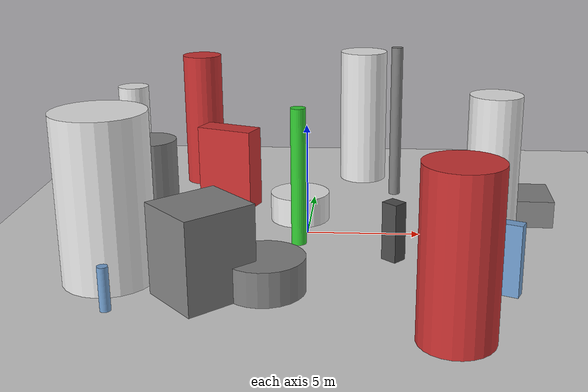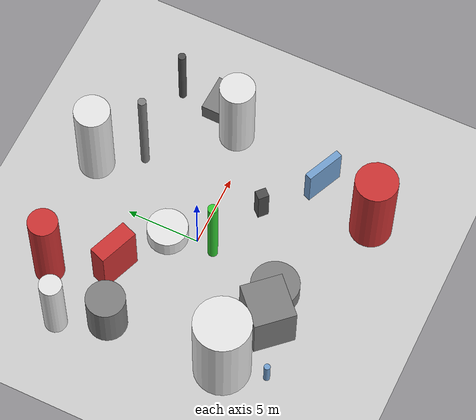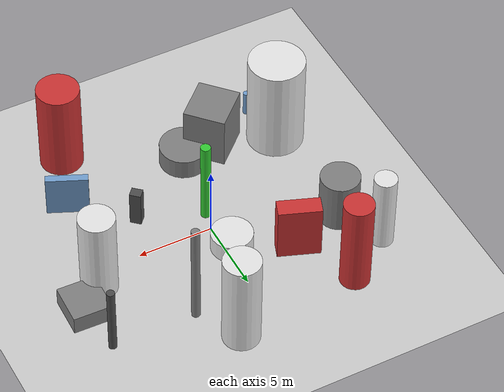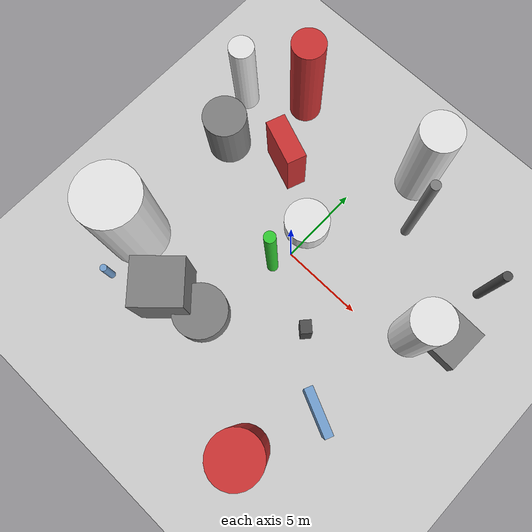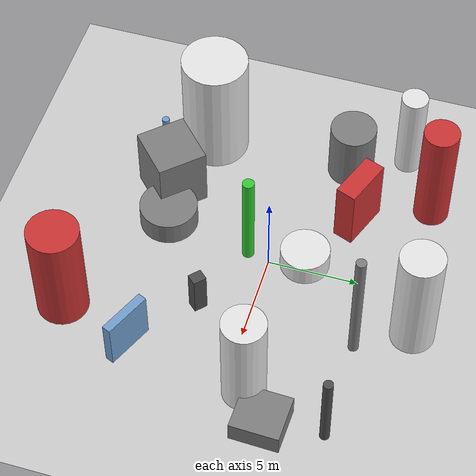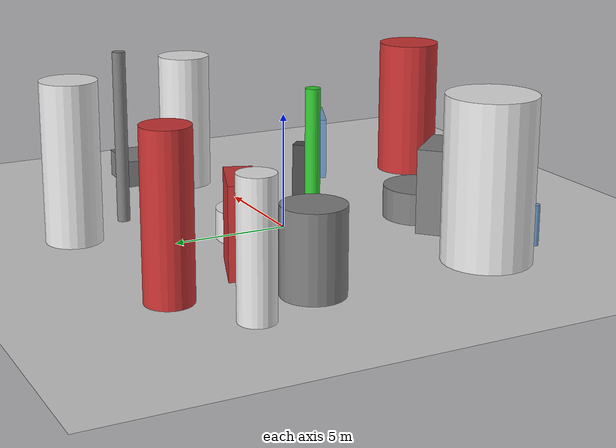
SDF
<?xml version='1.0'?>
<sdf version='1.6'>
  <world name='default'>
    <!-- Sun light -->
    <light name='sun' type='directional'>
      <cast_shadows>1</cast_shadows>
      <pose>0 0 10 0 0 0</pose>
      <diffuse>0.8 0.8 0.8 1</diffuse>
      <specular>0.2 0.2 0.2 1</specular>
      <attenuation>
        <range>1000</range>
        <constant>0.9</constant>
        <linear>0.01</linear>
        <quadratic>0.001</quadratic>
      </attenuation>
      <direction>-0.5 0.1 -0.9</direction>
    </light>

    <!-- Ground plane -->
    <model name='ground_plane'>
      <static>1</static>
      <link name='link'>
        <collision name='collision'>
          <geometry>
            <plane>
              <normal>0 0 1</normal>
              <size>100 100</size>
            </plane>
          </geometry>
          <surface>
            <contact>
              <collide_bitmask>65535</collide_bitmask>
              <ode/>
            </contact>
            <friction>
              <ode>
                <mu>100</mu>
                <mu2>50</mu2>
              </ode>
              <torsional><ode/></torsional>
            </friction>
            <bounce/>
          </surface>
          <max_contacts>10</max_contacts>
        </collision>
        <visual name='visual'>
          <cast_shadows>0</cast_shadows>
          <geometry>
            <plane>
              <normal>0 0 1</normal>
              <size>100 100</size>
            </plane>
          </geometry>
          <material>
            <script>
              <uri>file://media/materials/scripts/gazebo.material</uri>
              <n>Gazebo/Grey</n>
            </script>
          </material>
        </visual>
      </link>
    </model>

    <!-- Environment -->
    <magnetic_field>6e-06 2.3e-05 -4.2e-05</magnetic_field>
    <atmosphere type='adiabatic'/>
    <physics name='default_physics' default='0' type='ode'>
      <gravity>0 0 -9.8</gravity>
      <max_step_size>0.004</max_step_size>
      <real_time_factor>1</real_time_factor>
      <real_time_update_rate>250</real_time_update_rate>
    </physics>
    <scene>
      <ambient>0.4 0.4 0.4 1</ambient>
      <background>0.7 0.7 0.7 1</background>
      <shadows>1</shadows>
    </scene>
    <wind/>
    <spherical_coordinates>
      <surface_model>EARTH_WGS84</surface_model>
      <latitude_deg>0</latitude_deg>
      <longitude_deg>0</longitude_deg>
      <elevation>0</elevation>
      <heading_deg>0</heading_deg>
    </spherical_coordinates>

    <!-- ============ OBSTACLES (18) ============ -->
    <model name='obs_00'>
      <static>1</static>
      <link name='link'>
        <visual name='visual'>
          <geometry>
            <cylinder>
              <radius>0.9814</radius>
              <length>6.7359</length>
            </cylinder>
          </geometry>
          <material>
            <script>
              <n>Gazebo/Red</n>
              <uri>file://media/materials/scripts/gazebo.material</uri>
            </script>
            <ambient>0.8 0.2 0.2 1</ambient>
          </material>
        </visual>
        <collision name='collision'>
          <geometry>
            <cylinder>
              <radius>0.9814</radius>
              <length>6.7359</length>
            </cylinder>
          </geometry>
          <max_contacts>10</max_contacts>
          <surface>
            <contact><ode/></contact>
            <bounce/>
            <friction>
              <ode><mu>1</mu><mu2>1</mu2></ode>
              <torsional><ode/></torsional>
            </friction>
          </surface>
        </collision>
      </link>
      <pose>-6.0255 7.7504 3.3680 0 0 1.6686</pose>
    </model>

    <model name='obs_01'>
      <static>1</static>
      <link name='link'>
        <visual name='visual'>
          <geometry>
            <box>
              <size>0.5025 2.7331 2.8952</size>
            </box>
          </geometry>
          <material>
            <script>
              <n>Gazebo/Blue</n>
              <uri>file://media/materials/scripts/gazebo.material</uri>
            </script>
            <ambient>0.447 0.624 0.812 1</ambient>
          </material>
        </visual>
        <collision name='collision'>
          <geometry>
            <box>
              <size>0.5025 2.7331 2.8952</size>
            </box>
          </geometry>
          <max_contacts>10</max_contacts>
          <surface>
            <contact><ode/></contact>
            <bounce/>
            <friction>
              <ode><mu>1</mu><mu2>1</mu2></ode>
              <torsional><ode/></torsional>
            </friction>
          </surface>
        </collision>
      </link>
      <pose>7.2732 -5.6442 1.4476 0 0 1.1533</pose>
    </model>

    <model name='obs_02'>
      <static>1</static>
      <link name='link'>
        <visual name='visual'>
          <geometry>
            <cylinder>
              <radius>1.2965</radius>
              <length>3.5485</length>
            </cylinder>
          </geometry>
          <material>
            <script>
              <n>Gazebo/Grey</n>
              <uri>file://media/materials/scripts/gazebo.material</uri>
            </script>
            <ambient>0.5 0.5 0.5 1</ambient>
          </material>
        </visual>
        <collision name='collision'>
          <geometry>
            <cylinder>
              <radius>1.2965</radius>
              <length>3.5485</length>
            </cylinder>
          </geometry>
          <max_contacts>10</max_contacts>
          <surface>
            <contact><ode/></contact>
            <bounce/>
            <friction>
              <ode><mu>1</mu><mu2>1</mu2></ode>
              <torsional><ode/></torsional>
            </friction>
          </surface>
        </collision>
      </link>
      <pose>-7.7414 2.6582 1.7743 0 0 2.7738</pose>
    </model>

    <model name='obs_03'>
      <static>1</static>
      <link name='link'>
        <visual name='visual'>
          <geometry>
            <box>
              <size>3.0235 2.8040 3.6948</size>
            </box>
          </geometry>
          <material>
            <script>
              <n>Gazebo/Grey</n>
              <uri>file://media/materials/scripts/gazebo.material</uri>
            </script>
            <ambient>0.5 0.5 0.5 1</ambient>
          </material>
        </visual>
        <collision name='collision'>
          <geometry>
            <box>
              <size>3.0235 2.8040 3.6948</size>
            </box>
          </geometry>
          <max_contacts>10</max_contacts>
          <surface>
            <contact><ode/></contact>
            <bounce/>
            <friction>
              <ode><mu>1</mu><mu2>1</mu2></ode>
              <torsional><ode/></torsional>
            </friction>
          </surface>
        </collision>
      </link>
      <pose>-3.5097 -6.6528 1.8474 0 0 0.7502</pose>
    </model>

    <model name='obs_04'>
      <static>1</static>
      <link name='link'>
        <visual name='visual'>
          <geometry>
            <cylinder>
              <radius>1.4140</radius>
              <length>6.3601</length>
            </cylinder>
          </geometry>
          <material>
            <script>
              <n>Gazebo/Red</n>
              <uri>file://media/materials/scripts/gazebo.material</uri>
            </script>
            <ambient>0.8 0.2 0.2 1</ambient>
          </material>
        </visual>
        <collision name='collision'>
          <geometry>
            <cylinder>
              <radius>1.4140</radius>
              <length>6.3601</length>
            </cylinder>
          </geometry>
          <max_contacts>10</max_contacts>
          <surface>
            <contact><ode/></contact>
            <bounce/>
            <friction>
              <ode><mu>1</mu><mu2>1</mu2></ode>
              <torsional><ode/></torsional>
            </friction>
          </surface>
        </collision>
      </link>
      <pose>5.7829 -9.8214 3.1801 0 0 0.5965</pose>
    </model>

    <model name='obs_05'>
      <static>1</static>
      <link name='link'>
        <visual name='visual'>
          <geometry>
            <cylinder>
              <radius>0.7468</radius>
              <length>5.4863</length>
            </cylinder>
          </geometry>
          <material>
            <script>
              <n>Gazebo/White</n>
              <uri>file://media/materials/scripts/gazebo.material</uri>
            </script>
            <ambient>0.9 0.9 0.9 1</ambient>
          </material>
        </visual>
        <collision name='collision'>
          <geometry>
            <cylinder>
              <radius>0.7468</radius>
              <length>5.4863</length>
            </cylinder>
          </geometry>
          <max_contacts>10</max_contacts>
          <surface>
            <contact><ode/></contact>
            <bounce/>
            <friction>
              <ode><mu>1</mu><mu2>1</mu2></ode>
              <torsional><ode/></torsional>
            </friction>
          </surface>
        </collision>
      </link>
      <pose>-9.1601 5.6695 2.7432 0 0 1.9259</pose>
    </model>

    <model name='obs_06'>
      <static>1</static>
      <link name='link'>
        <visual name='visual'>
          <geometry>
            <cylinder>
              <radius>1.3689</radius>
              <length>1.3064</length>
            </cylinder>
          </geometry>
          <material>
            <script>
              <n>Gazebo/White</n>
              <uri>file://media/materials/scripts/gazebo.material</uri>
            </script>
            <ambient>0.9 0.9 0.9 1</ambient>
          </material>
        </visual>
        <collision name='collision'>
          <geometry>
            <cylinder>
              <radius>1.3689</radius>
              <length>1.3064</length>
            </cylinder>
          </geometry>
          <max_contacts>10</max_contacts>
          <surface>
            <contact><ode/></contact>
            <bounce/>
            <friction>
              <ode><mu>1</mu><mu2>1</mu2></ode>
              <torsional><ode/></torsional>
            </friction>
          </surface>
        </collision>
      </link>
      <pose>-0.4946 1.9242 0.6532 0 0 0.3024</pose>
    </model>

    <model name='obs_07'>
      <static>1</static>
      <link name='link'>
        <visual name='visual'>
          <geometry>
            <cylinder>
              <radius>0.2079</radius>
              <length>1.7494</length>
            </cylinder>
          </geometry>
          <material>
            <script>
              <n>Gazebo/Blue</n>
              <uri>file://media/materials/scripts/gazebo.material</uri>
            </script>
            <ambient>0.447 0.624 0.812 1</ambient>
          </material>
        </visual>
        <collision name='collision'>
          <geometry>
            <cylinder>
              <radius>0.2079</radius>
              <length>1.7494</length>
            </cylinder>
          </geometry>
          <max_contacts>10</max_contacts>
          <surface>
            <contact><ode/></contact>
            <bounce/>
            <friction>
              <ode><mu>1</mu><mu2>1</mu2></ode>
              <torsional><ode/></torsional>
            </friction>
          </surface>
        </collision>
      </link>
      <pose>-6.8460 -8.1720 0.8747 0 0 0.5612</pose>
    </model>

    <model name='obs_08'>
      <static>1</static>
      <link name='link'>
        <visual name='visual'>
          <geometry>
            <cylinder>
              <radius>1.2064</radius>
              <length>6.8541</length>
            </cylinder>
          </geometry>
          <material>
            <script>
              <n>Gazebo/White</n>
              <uri>file://media/materials/scripts/gazebo.material</uri>
            </script>
            <ambient>0.9 0.9 0.9 1</ambient>
          </material>
        </visual>
        <collision name='collision'>
          <geometry>
            <cylinder>
              <radius>1.2064</radius>
              <length>6.8541</length>
            </cylinder>
          </geometry>
          <max_contacts>10</max_contacts>
          <surface>
            <contact><ode/></contact>
            <bounce/>
            <friction>
              <ode><mu>1</mu><mu2>1</mu2></ode>
              <torsional><ode/></torsional>
            </friction>
          </surface>
        </collision>
      </link>
      <pose>2.3729 8.6170 3.4270 0 0 0.3102</pose>
    </model>

    <model name='obs_09'>
      <static>1</static>
      <link name='link'>
        <visual name='visual'>
          <geometry>
            <box>
              <size>2.6839 2.5661 1.2454</size>
            </box>
          </geometry>
          <material>
            <script>
              <n>Gazebo/Grey</n>
              <uri>file://media/materials/scripts/gazebo.material</uri>
            </script>
            <ambient>0.5 0.5 0.5 1</ambient>
          </material>
        </visual>
        <collision name='collision'>
          <geometry>
            <box>
              <size>2.6839 2.5661 1.2454</size>
            </box>
          </geometry>
          <max_contacts>10</max_contacts>
          <surface>
            <contact><ode/></contact>
            <bounce/>
            <friction>
              <ode><mu>1</mu><mu2>1</mu2></ode>
              <torsional><ode/></torsional>
            </friction>
          </surface>
        </collision>
      </link>
      <pose>9.9395 2.5026 0.6227 0 0 1.5391</pose>
    </model>

    <model name='obs_10'>
      <static>1</static>
      <link name='link'>
        <visual name='visual'>
          <geometry>
            <cylinder>
              <radius>0.2811</radius>
              <length>7.5115</length>
            </cylinder>
          </geometry>
          <material>
            <script>
              <n>Gazebo/Grey</n>
              <uri>file://media/materials/scripts/gazebo.material</uri>
            </script>
            <ambient>0.5 0.5 0.5 1</ambient>
          </material>
        </visual>
        <collision name='collision'>
          <geometry>
            <cylinder>
              <radius>0.2811</radius>
              <length>7.5115</length>
            </cylinder>
          </geometry>
          <max_contacts>10</max_contacts>
          <surface>
            <contact><ode/></contact>
            <bounce/>
            <friction>
              <ode><mu>1</mu><mu2>1</mu2></ode>
              <torsional><ode/></torsional>
            </friction>
          </surface>
        </collision>
      </link>
      <pose>4.0266 5.8293 3.7557 0 0 1.9037</pose>
    </model>

    <model name='obs_11'>
      <static>1</static>
      <link name='link'>
        <visual name='visual'>
          <geometry>
            <cylinder>
              <radius>1.8675</radius>
              <length>6.8245</length>
            </cylinder>
          </geometry>
          <material>
            <script>
              <n>Gazebo/White</n>
              <uri>file://media/materials/scripts/gazebo.material</uri>
            </script>
            <ambient>0.9 0.9 0.9 1</ambient>
          </material>
        </visual>
        <collision name='collision'>
          <geometry>
            <cylinder>
              <radius>1.8675</radius>
              <length>6.8245</length>
            </cylinder>
          </geometry>
          <max_contacts>10</max_contacts>
          <surface>
            <contact><ode/></contact>
            <bounce/>
            <friction>
              <ode><mu>1</mu><mu2>1</mu2></ode>
              <torsional><ode/></torsional>
            </friction>
          </surface>
        </collision>
      </link>
      <pose>-7.4835 -5.3465 3.4123 0 0 2.0601</pose>
    </model>

    <model name='obs_12'>
      <static>1</static>
      <link name='link'>
        <visual name='visual'>
          <geometry>
            <cylinder>
              <radius>0.2623</radius>
              <length>4.9061</length>
            </cylinder>
          </geometry>
          <material>
            <script>
              <n>Gazebo/DarkGrey</n>
              <uri>file://media/materials/scripts/gazebo.material</uri>
            </script>
            <ambient>0.3 0.3 0.3 1</ambient>
          </material>
        </visual>
        <collision name='collision'>
          <geometry>
            <cylinder>
              <radius>0.2623</radius>
              <length>4.9061</length>
            </cylinder>
          </geometry>
          <max_contacts>10</max_contacts>
          <surface>
            <contact><ode/></contact>
            <bounce/>
            <friction>
              <ode><mu>1</mu><mu2>1</mu2></ode>
              <torsional><ode/></torsional>
            </friction>
          </surface>
        </collision>
      </link>
      <pose>9.6335 5.7712 2.4531 0 0 2.5165</pose>
    </model>

    <model name='obs_13'>
      <static>1</static>
      <link name='link'>
        <visual name='visual'>
          <geometry>
            <cylinder>
              <radius>1.6194</radius>
              <length>1.4081</length>
            </cylinder>
          </geometry>
          <material>
            <script>
              <n>Gazebo/Grey</n>
              <uri>file://media/materials/scripts/gazebo.material</uri>
            </script>
            <ambient>0.5 0.5 0.5 1</ambient>
          </material>
        </visual>
        <collision name='collision'>
          <geometry>
            <cylinder>
              <radius>1.6194</radius>
              <length>1.4081</length>
            </cylinder>
          </geometry>
          <max_contacts>10</max_contacts>
          <surface>
            <contact><ode/></contact>
            <bounce/>
            <friction>
              <ode><mu>1</mu><mu2>1</mu2></ode>
              <torsional><ode/></torsional>
            </friction>
          </surface>
        </collision>
      </link>
      <pose>-1.2256 -6.1407 0.7041 0 0 2.5825</pose>
    </model>

    <model name='obs_14'>
      <static>1</static>
      <link name='link'>
        <visual name='visual'>
          <geometry>
            <box>
              <size>0.6423 0.7464 2.5195</size>
            </box>
          </geometry>
          <material>
            <script>
              <n>Gazebo/DarkGrey</n>
              <uri>file://media/materials/scripts/gazebo.material</uri>
            </script>
            <ambient>0.3 0.3 0.3 1</ambient>
          </material>
        </visual>
        <collision name='collision'>
          <geometry>
            <box>
              <size>0.6423 0.7464 2.5195</size>
            </box>
          </geometry>
          <max_contacts>10</max_contacts>
          <surface>
            <contact><ode/></contact>
            <bounce/>
            <friction>
              <ode><mu>1</mu><mu2>1</mu2></ode>
              <torsional><ode/></torsional>
            </friction>
          </surface>
        </collision>
      </link>
      <pose>3.7850 -2.8367 1.2598 0 0 0.8351</pose>
    </model>

    <model name='obs_15'>
      <static>1</static>
      <link name='link'>
        <visual name='visual'>
          <geometry>
            <cylinder>
              <radius>0.3297</radius>
              <length>6.0762</length>
            </cylinder>
          </geometry>
          <material>
            <script>
              <n>Gazebo/Green</n>
              <uri>file://media/materials/scripts/gazebo.material</uri>
            </script>
            <ambient>0.2 0.8 0.2 1</ambient>
          </material>
        </visual>
        <collision name='collision'>
          <geometry>
            <cylinder>
              <radius>0.3297</radius>
              <length>6.0762</length>
            </cylinder>
          </geometry>
          <max_contacts>10</max_contacts>
          <surface>
            <contact><ode/></contact>
            <bounce/>
            <friction>
              <ode><mu>1</mu><mu2>1</mu2></ode>
              <torsional><ode/></torsional>
            </friction>
          </surface>
        </collision>
      </link>
      <pose>-0.2940 -1.2500 3.0381 0 0 3.0178</pose>
    </model>

    <model name='obs_16'>
      <static>1</static>
      <link name='link'>
        <visual name='visual'>
          <geometry>
            <box>
              <size>1.1759 2.7991 3.8501</size>
            </box>
          </geometry>
          <material>
            <script>
              <n>Gazebo/Red</n>
              <uri>file://media/materials/scripts/gazebo.material</uri>
            </script>
            <ambient>0.8 0.2 0.2 1</ambient>
          </material>
        </visual>
        <collision name='collision'>
          <geometry>
            <box>
              <size>1.1759 2.7991 3.8501</size>
            </box>
          </geometry>
          <max_contacts>10</max_contacts>
          <surface>
            <contact><ode/></contact>
            <bounce/>
            <friction>
              <ode><mu>1</mu><mu2>1</mu2></ode>
              <torsional><ode/></torsional>
            </friction>
          </surface>
        </collision>
      </link>
      <pose>-4.1057 3.9408 1.9251 0 0 1.2106</pose>
    </model>

    <model name='obs_17'>
      <static>1</static>
      <link name='link'>
        <visual name='visual'>
          <geometry>
            <cylinder>
              <radius>1.1826</radius>
              <length>6.2228</length>
            </cylinder>
          </geometry>
          <material>
            <script>
              <n>Gazebo/White</n>
              <uri>file://media/materials/scripts/gazebo.material</uri>
            </script>
            <ambient>0.9 0.9 0.9 1</ambient>
          </material>
        </visual>
        <collision name='collision'>
          <geometry>
            <cylinder>
              <radius>1.1826</radius>
              <length>6.2228</length>
            </cylinder>
          </geometry>
          <max_contacts>10</max_contacts>
          <surface>
            <contact><ode/></contact>
            <bounce/>
            <friction>
              <ode><mu>1</mu><mu2>1</mu2></ode>
              <torsional><ode/></torsional>
            </friction>
          </surface>
        </collision>
      </link>
      <pose>8.2895 1.0904 3.1114 0 0 1.7543</pose>
    </model>

    <!-- GUI camera -->
    <gui fullscreen='0'>
      <camera name='user_camera'>
        <pose>-15 0 18 0 0.85 0.15</pose>
        <view_controller>orbit</view_controller>
        <projection_type>perspective</projection_type>
      </camera>
    </gui>
  </world>
</sdf>
